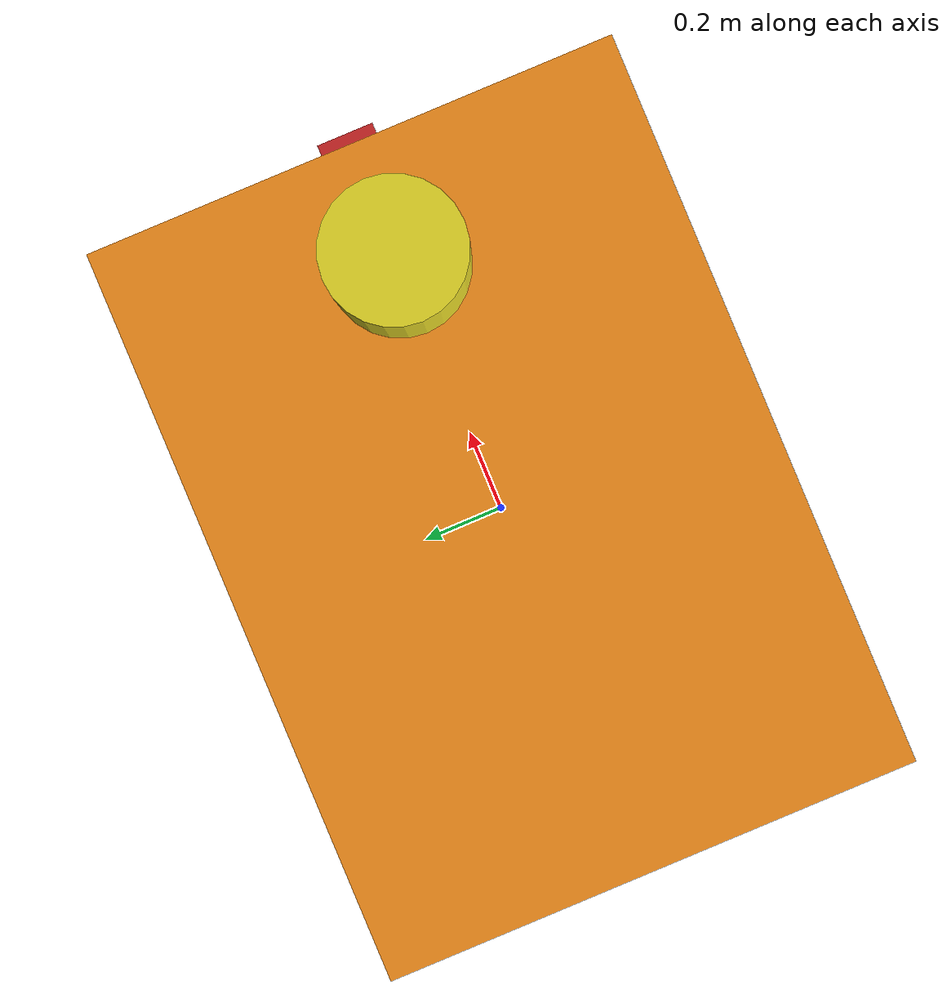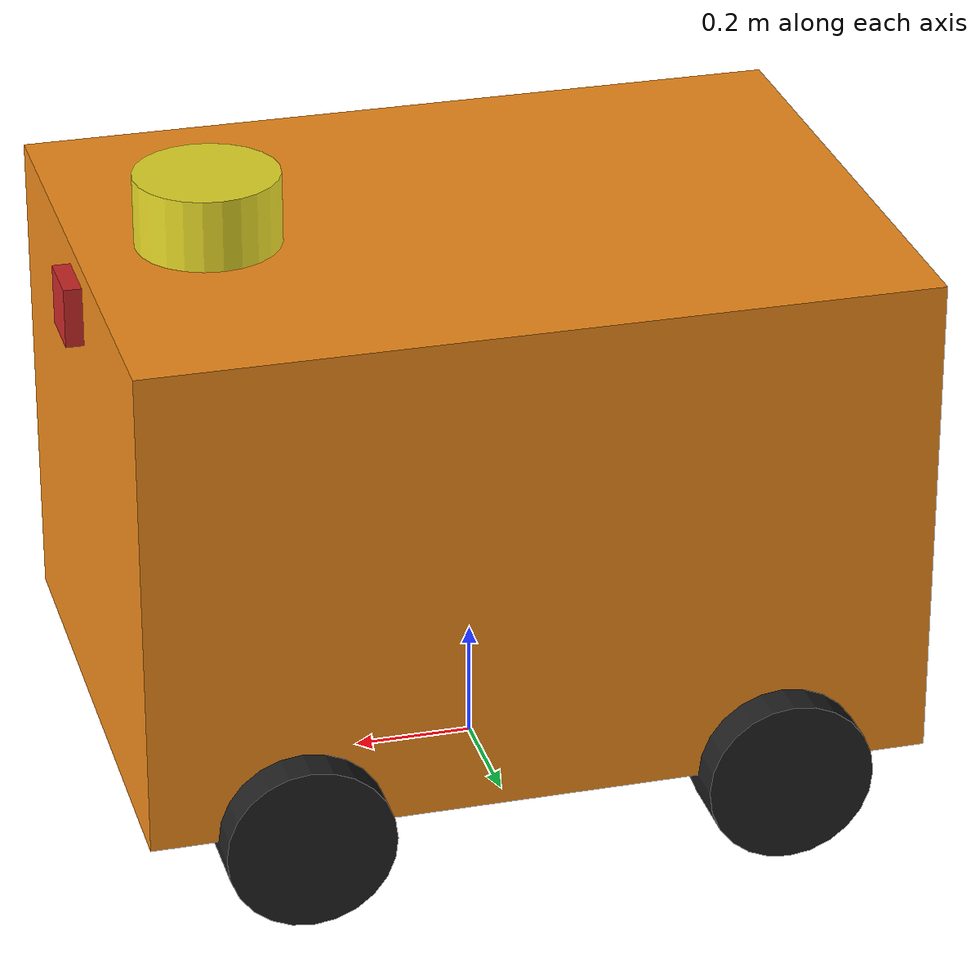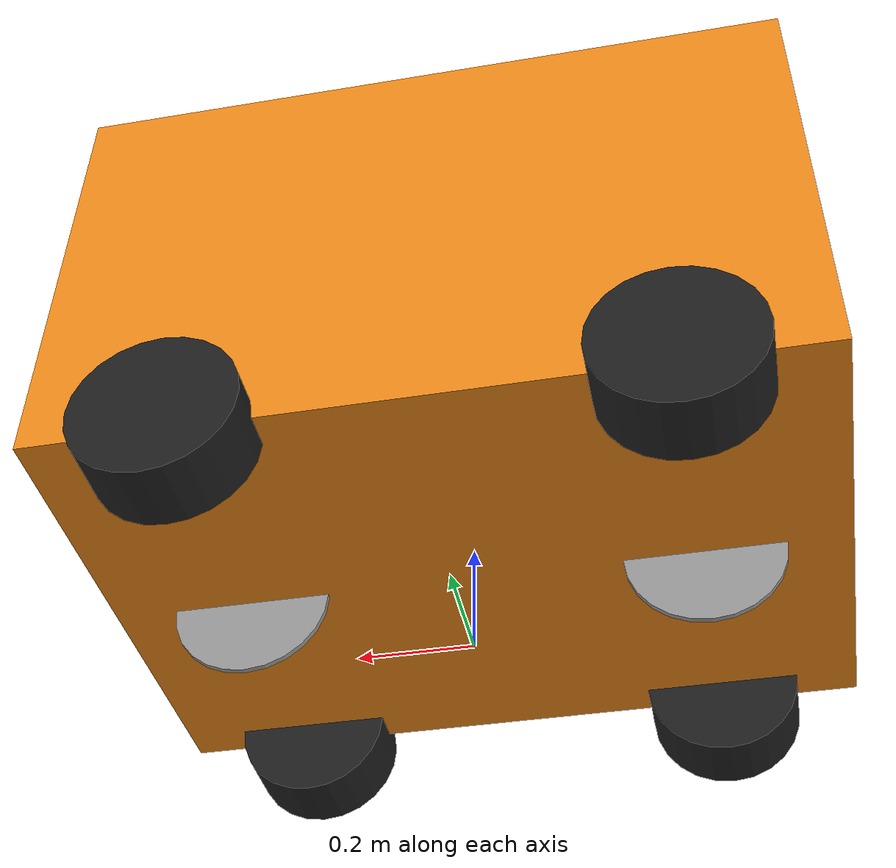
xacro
<?xml version="1.0"?>
<robot xmlns:xacro="http://www.ros.org/wiki/xacro"  name="robot">

    <xacro:arg name="use_ros2_control" default="true"/>
    <xacro:arg name="sim_mode" default="false"/>

    <xacro:include filename="robot_core2.xacro" />
    <xacro:include filename="sensors/lidar.xacro" />
    <xacro:include filename="sensors/camera.xacro" />
    <xacro:include filename="gazebo/ros2_controls_real.xacro" />

</robot>

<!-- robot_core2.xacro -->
<robot xmlns:xacro="http://www.ros.org/wiki/xacro" >
    <xacro:include filename="inertial_macros.xacro"/>
    <xacro:include filename="materials.xacro"/>

    <!-- Constants for robot dimensions -->
    <xacro:property name="PI" value="3.1415926535897931"/>
    <xacro:property name="base_mass" value="8.0" /> <!-- arbitrary value for base mass -->
    <xacro:property name="base_width" value="0.94" />
    <xacro:property name="base_length" value="1.3" />
    <xacro:property name="base_height" value="0.83" />
    <xacro:property name="wheelbase" value="0.8" />
    <xacro:property name="wheel_mass" value="0.34055" /> <!-- arbitrary value for wheel mass -->
    <xacro:property name="wheel_len" value="0.125" />
    <xacro:property name="wheel_radius" value="0.1397" />

    <!-- Base Link -->
    <link name="base_link" />

    <!-- Chassis -->

    <link name="chassis_link">
        <visual>
            <origin xyz="0 0 0" rpy="0 0 0"/>
            <geometry>
                <box size="${base_length} ${base_width} ${base_height}"/>
            </geometry>
            <material name="orange"/>
        </visual>
        <collision>
            <origin xyz="0 0 0" rpy="0 0 0"/>
            <geometry>
                <box size="${base_length} ${base_width} ${base_height}"/>
            </geometry>
        </collision>
        <inertial>
            <origin xyz="0 0 0" rpy="0 0 0"/>
            <mass value="${base_mass}"/>
            <inertia
                ixx="0.000270" ixy="0.0" ixz="0.0"
                iyy="0.000270" iyz="0.0"
                izz="0.000426"/>
        </inertial>
    </link>
    <gazebo reference="chassis_link">
        <material>Gazebo/Orange</material>
    </gazebo>

    <joint name="chassis_joint" type="fixed">
        <parent link="base_link"/>
        <child link="chassis_link"/>
        <origin xyz="0 0 ${base_height/2 + wheel_radius}" rpy="0 0 0"/>
        <axis xyz="0 0 1"/>
        <dynamics damping="0.2"/>
    </joint>

    <!-- rear wheels -->

    <!-- virtual rear wheel -->

    <link name="virtual_rear_wheel">
        <visual>
            <origin xyz="0 0 0" rpy="${PI/2} 0 ${PI/2}"/>
            <geometry>
                <cylinder length="0.01" radius="${wheel_radius}"/>
            </geometry>
            <material name="invisible"/>
        </visual>
        <collision>
            <origin xyz="0 0 0" rpy="${PI/2} 0 ${PI/2}"/>
            <geometry>
                <cylinder length="0.01" radius="${wheel_radius}"/>
            </geometry>
        </collision>
        <inertial>
            <origin xyz="0 0 0" rpy="${PI/2} 0 ${PI/2}"/>
            <mass value="${wheel_mass}"/>
            <inertia
                ixx="0.000270" ixy="0.0" ixz="0.0"
                iyy="0.000270" iyz="0.0"
                izz="0.000426"/>
        </inertial>
    </link>
    <gazebo reference="virtual_rear_wheel">
        <material>Gazebo/GreyTransparent</material>
    </gazebo>

    <joint name="virtual_rear_wheel_joint" type="continuous">
        <parent link="chassis_link"/>
        <child link="virtual_rear_wheel"/>
        <origin xyz="-${wheelbase/2} 0 -${base_height/2}" rpy="0 0 ${PI/2}"/>
        <axis xyz="1 0 0"/>
        <limit effort="100.0" velocity="100.0"/>
        <dynamics damping="0.2"/>
    </joint>

    <!-- rear right wheel -->

    <link name="rear_right_wheel">
        <visual>
            <origin xyz="0 0 0" rpy="${PI/2} 0 ${PI/2}"/>
            <geometry>
                <cylinder length="${wheel_len}" radius="${wheel_radius}"/>
            </geometry>
            <material name="black"/>
        </visual>
        <collision>
            <origin xyz="0 0 0" rpy="${PI/2} 0 ${PI/2}"/>
            <geometry>
                <cylinder length="${wheel_len}" radius="${wheel_radius}"/>
            </geometry>
        </collision>
        <inertial>
            <origin xyz="0 0 0" rpy="${PI/2} 0 ${PI/2}"/>
            <mass value="${wheel_mass}"/>
            <inertia
                ixx="0.000270" ixy="0.0" ixz="0.0"
                iyy="0.000270" iyz="0.0"
                izz="0.000426"/>
        </inertial>
    </link>
    <gazebo reference="rear_right_wheel">
        <material>Gazebo/Black</material>
    </gazebo>

    <joint name="rear_right_wheel_joint" type="continuous">
        <parent link="chassis_link"/>
        <child link="rear_right_wheel"/>
        <origin xyz="-${wheelbase/2} ${base_width/2} -${base_height/2}" rpy="0 0 ${PI/2}"/>
        <axis xyz="1 0 0"/>
        <limit effort="100.0" velocity="100.0"/>
        <dynamics damping="0.2"/>
        <mimic joint="virtual_rear_wheel_joint" multiplier="1.0" offset="0.0"/>
    </joint>

    <!-- rear left wheel -->
    <link name="rear_left_wheel">
        <visual>
            <origin xyz="0 0 0" rpy="${PI/2} 0 ${PI/2}"/>
            <geometry>
                <cylinder length="${wheel_len}" radius="${wheel_radius}"/>
            </geometry>
            <material name="black"/>
        </visual>
        <collision>
            <origin xyz="0 0 0" rpy="${PI/2} 0 ${PI/2}"/>
            <geometry>
                <cylinder length="${wheel_len}" radius="${wheel_radius}"/>
            </geometry>
        </collision>
        <inertial>
            <origin xyz="0 0 0" rpy="${PI/2} 0 ${PI/2}"/>
            <mass value="${wheel_mass}"/>
            <inertia
            ixx="0.000270" ixy="0.0" ixz="0.0"
            iyy="0.000270" iyz="0.0"
            izz="0.000426"/>
        </inertial>
    </link>
    <gazebo reference="rear_left_wheel">
        <material>Gazebo/Blue</material>
    </gazebo>

    <joint name="rear_left_wheel_joint" type="continuous">
        <parent link="chassis_link" />
        <child link="rear_left_wheel" />
        <origin xyz="-${wheelbase/2} -${base_width/2} -${base_height/2}" rpy="0 0 ${PI/2}"/>
        <axis xyz="1 0 0"/>
        <limit effort="100.0" velocity="100.0"/>
        <dynamics damping="0.2"/>
        <mimic joint="virtual_rear_wheel_joint" multiplier="1.0" offset="0.0"/>
    </joint>

    <!-- front wheels -->

    <!-- virtual front wheel -->

    <link name="virtual_front_wheel">
        <visual>
        <origin xyz="0 0 0" rpy="${PI/2} 0 ${PI/2}"/>
        <geometry>
            <cylinder length="0.01" radius="${wheel_radius}"/>
        </geometry>
        <material name="invisible"/>
        </visual>
        <collision>
                <origin xyz="0 0 0" rpy="${PI/2} 0 ${PI/2}"/>
                <geometry>
                    <cylinder length="0.01" radius="${wheel_radius}"/>
                </geometry>
        </collision>
        <inertial>
                <origin xyz="0 0 0" rpy="${PI/2} 0 ${PI/2}"/>
                <mass value="${wheel_mass}"/>
                <inertia
                    ixx="0.000270" ixy="0.0" ixz="0.0"
                    iyy="0.000270" iyz="0.0"
                    izz="0.000426"/>
        </inertial>
    </link>
    <gazebo reference="virtual_front_wheel">
        <material>Gazebo/GreyTransparent</material>
    </gazebo>

    <joint name="virtual_front_wheel_joint" type="revolute">
        <parent link="chassis_link"/>
        <child link="virtual_front_wheel"/>
        <origin xyz="${wheelbase/2} 0 -${base_height/2}" rpy="0 0 ${PI/2}"/>
        <axis xyz="0 0 1"/>
        <limit lower="-0.4" upper="0.4" effort="100.0" velocity="0.0"/>
        <dynamics damping="0.2"/>
    </joint>

    <!-- front right wheel -->

    <link name="front_right_wheel">
        <visual>
            <origin xyz="0 0 0" rpy="${PI/2} 0 ${PI/2}"/>
            <geometry>
                <cylinder length="${wheel_len}" radius="${wheel_radius}"/>
            </geometry>
            <material name="black"/>
        </visual>
        <collision>
            <origin xyz="0 0 0" rpy="${PI/2} 0 ${PI/2}"/>
            <geometry>
                <cylinder length="${wheel_len}" radius="${wheel_radius}"/>
            </geometry>
        </collision>
        <inertial>
            <origin xyz="0 0 0" rpy="${PI/2} 0 ${PI/2}"/>
            <mass value="${wheel_mass}"/>
            <inertia
                ixx="0.000270" ixy="0.0" ixz="0.0"
                iyy="0.000270" iyz="0.0"
                izz="0.000426"/>
        </inertial>
    </link>
    <gazebo reference="front_right_wheel">
        <material>Gazebo/Blue</material>
    </gazebo>

    <joint name="front_right_steering_joint" type="revolute">
        <parent link="chassis_link" />
        <child link="front_right_wheel" />
        <origin xyz="${wheelbase/2} ${base_width/2} -${base_height/2}" rpy="0 0 ${PI/2}"/>
        <axis xyz="1 0 1"/>
        <limit lower="-0.4" upper="0.4" effort="100.0" velocity="0.0"/>
        <dynamics damping="0.2"/>
        <mimic joint="virtual_front_wheel_joint" multiplier="1.0" offset="0.0"/>
    </joint>

    <!-- front right steering -->

    <!-- front left steering -->

    <link name="front_left_wheel">
        <visual>
            <origin xyz="0 0 0" rpy="${PI/2} 0 ${PI/2}"/>
            <geometry>
                <cylinder length="${wheel_len}" radius="${wheel_radius}"/>
            </geometry>
            <material name="black"/>
        </visual>
        <collision>
            <origin xyz="0 0 0" rpy="${PI/2} 0 ${PI/2}"/>
            <geometry>
                <cylinder length="${wheel_len}" radius="${wheel_radius}"/>
            </geometry>
        </collision>
        <inertial>
            <origin xyz="0 0 0" rpy="${PI/2} 0 ${PI/2}"/>
            <mass value="${wheel_mass}"/>
            <inertia
                ixx="0.000270" ixy="0.0" ixz="0.0"
                iyy="0.000270" iyz="0.0"
                izz="0.000426"/>
        </inertial>

    </link>
    <gazebo reference="front_left_wheel">
        <material>Gazebo/Blue</material>
    </gazebo>

    <joint name="front_left_steering_joint" type="revolute">
        <parent link="chassis_link" />
        <child link="front_left_wheel" />
        <origin xyz="${wheelbase/2} -${base_width/2} -${base_height/2}" rpy="0 0 ${PI/2}"/>
        <axis xyz="0 0 1"/>
        <limit lower="-0.4" upper="0.4" effort="100.0" velocity="0.0"/>
        <dynamics damping="0.2"/>
        <mimic joint="virtual_front_wheel_joint" multiplier="1.0" offset="0.0"/>
    </joint>

</robot>

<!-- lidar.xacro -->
<robot xmlns:xacro="http://www.ros.org/wiki/xacro" >
<!-- Constants for robot dimensions -->

    <xacro:property name="lidar_mass" value="0.2" /> <!-- arbitrary value for base mass -->
    <xacro:property name="lidar_radius" value="0.12" />
    <xacro:property name="lidar_length" value="0.12" />

    <joint name="laser_joint" type="fixed">
        <parent link="chassis_link"/>
        <child link="laser_frame"/>
        <origin xyz="${base_length/3}  0 ${base_height/2 + lidar_length/2 }" rpy="0 0 0"/>
    </joint>

    <link name="laser_frame">
        <visual>
            <geometry>
                <cylinder radius="${lidar_radius}" length="${lidar_length}"/>
            </geometry>
            <material name="yellow"/>
        </visual>
        <collision>
            <geometry>
                <cylinder radius="${lidar_radius}" length="${lidar_length}"/>
            </geometry>
        </collision>
        <xacro:inertial_cylinder mass="${lidar_mass}" length="${lidar_length}" radius="${lidar_radius}">
            <origin xyz="0 0 0" rpy="0 0 0"/>
        </xacro:inertial_cylinder>
    </link>

    <gazebo reference="laser_frame">
        <material>Gazebo/Yellow</material>

        <sensor name="laser" type="ray">
            <pose> 0 0 0 0 0 0 </pose>
            <visualize>false</visualize>
            <update_rate>10</update_rate>
            <ray>
                <scan>
                    <horizontal>
                        <samples>360</samples>
                        <min_angle>-3.14</min_angle>
                        <max_angle>3.14</max_angle>
                    </horizontal>
                </scan>
                <range>
                    <min>0.3</min>
                    <max>12</max>
                </range>
            </ray>
            <plugin name="laser_controller" filename="libgazebo_ros_ray_sensor.so">
                <ros>
                    <argument>~/out:=scan</argument>
                </ros>
                <output_type>sensor_msgs/LaserScan</output_type>
                <frame_name>laser_frame</frame_name>
            </plugin>
        </sensor>
    </gazebo>

</robot>

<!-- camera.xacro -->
<robot xmlns:xacro="http://www.ros.org/wiki/xacro" >

    <!-- Camera properties -->
    <xacro:property name="hfov" value="1.089" />
    <xacro:property name="cam_width" value="640" />
    <xacro:property name="cam_height" value="480" />
    <xacro:property name="near" value="0.05" />
    <xacro:property name="far" value="8.0" />
    <xacro:property name="camera_height_dif" value="0.5" />
    <xacro:property name="camera_size_x" value="0.03" />
    <xacro:property name="camera_size_y" value="0.1" />
    <xacro:property name="camera_size_z" value="0.1" />

    <joint name="camera_joint" type="fixed">
        <parent link="chassis_link"/>
        <child link="camera_link"/>
        <origin xyz="${base_length/2 + camera_size_x/2 } 0 ${base_height - camera_height_dif}" rpy="0 0 0"/>
    </joint>

    <link name="camera_link">
        <visual>
            <geometry>
                <box size="${camera_size_x} ${camera_size_y} ${camera_size_z}"/>
            </geometry>
            <material name="red"/>
        </visual>
    </link>

    <joint name="camera_optical_joint" type="fixed">
        <parent link="camera_link"/>
        <child link="camera_link_optical"/>
        <origin xyz="0 0 0" rpy="${-PI/2} 0 ${-PI/2}"/>
    </joint>

    <link name="camera_link_optical"></link>
    <gazebo reference="camera_link">
        <material>Gazebo/Red</material>
        <sensor name="camera" type="camera">
            <pose> 0 0 0 0 0 0 </pose>
            <visualize>true</visualize>
            <update_rate>10</update_rate>
            <camera>
                <horizontal_fov>${hfov}</horizontal_fov>
                <image>
                    <format>R8G8B8</format>
                    <width>${cam_width}</width>
                    <height>${cam_height}</height>
                </image>
                <clip>
                    <near>${near}</near>
                    <far>${far}</far>
                </clip>
            </camera>
            <plugin name="camera_controller" filename="libgazebo_ros_camera.so">
                <frame_name>camera_link_optical</frame_name>
            </plugin>
        </sensor>
    </gazebo>

</robot>
